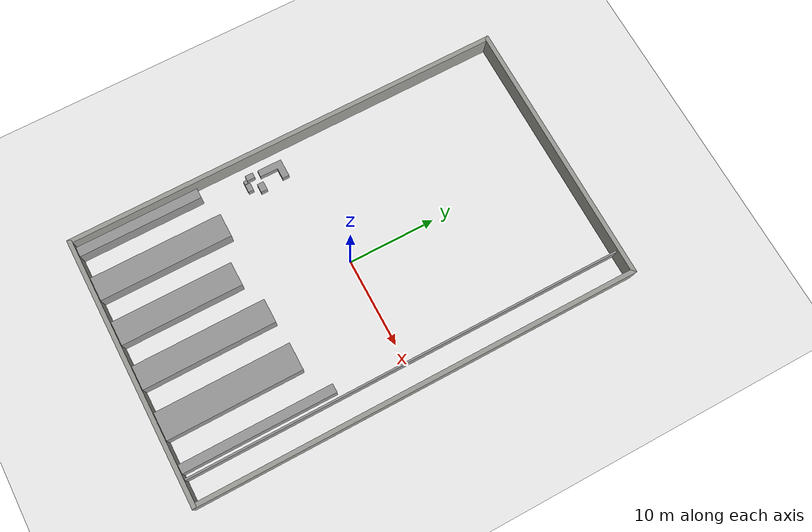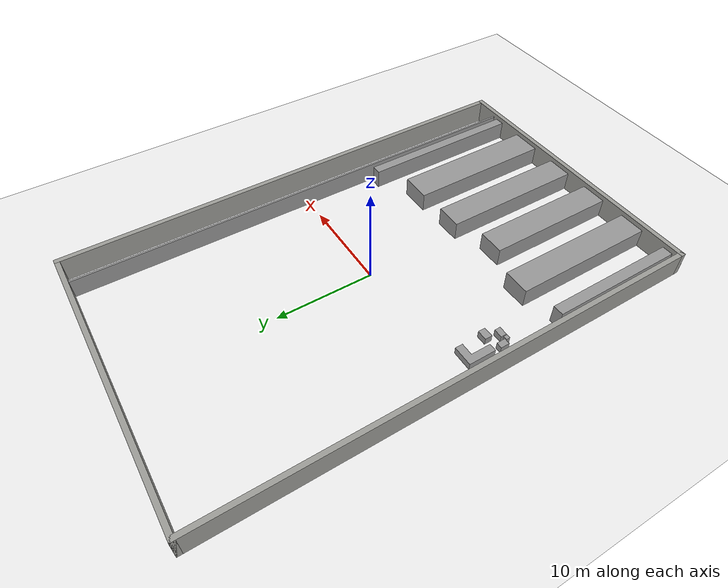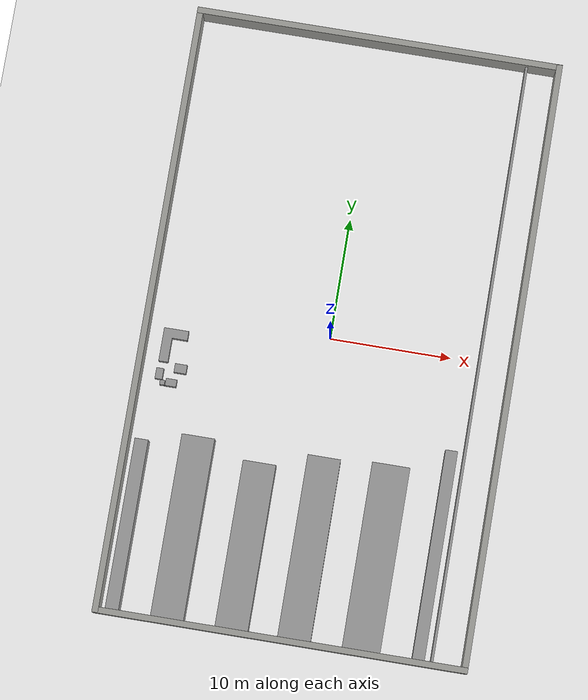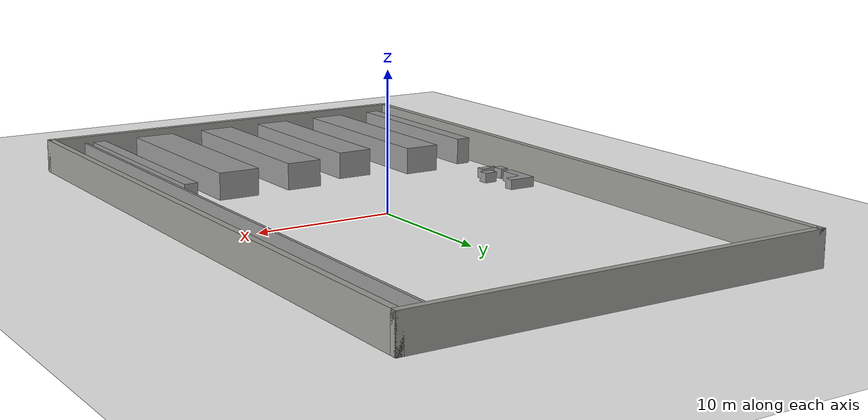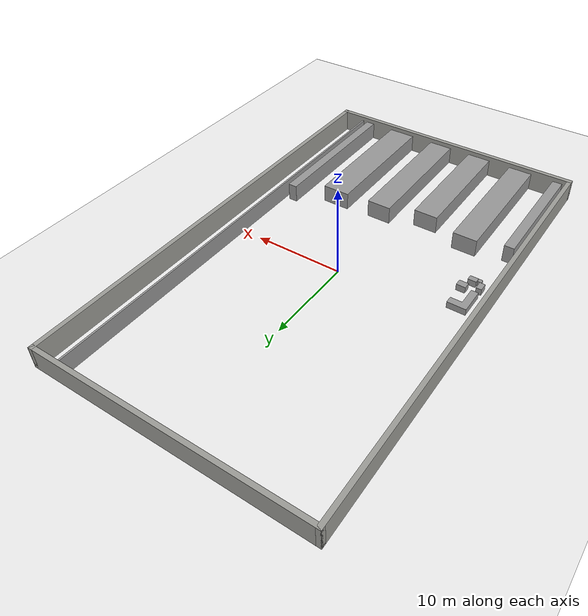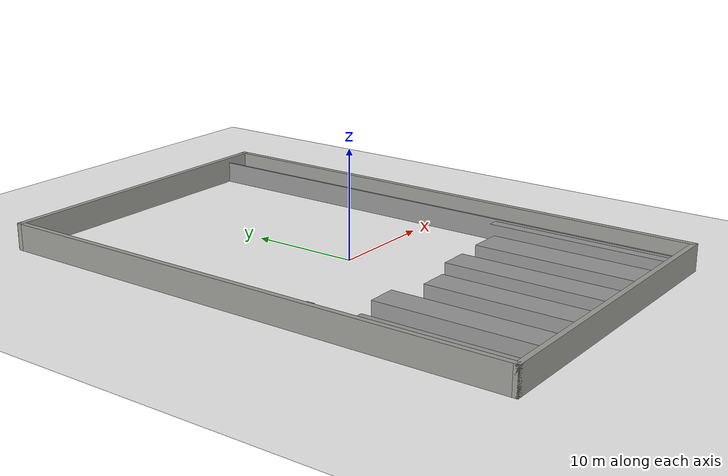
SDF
<?xml version='1.0' encoding='utf-8'?>
<sdf version="1.8">
  <world name="world_demo">

    <gravity>0 0 -9.8</gravity>
    <physics type='ode'>
      <max_step_size>0.004</max_step_size>
      <real_time_factor>1</real_time_factor>
      <max_contacts>10</max_contacts>
    </physics>
    <plugin name='gz::sim::systems::Physics' filename='gz-sim-physics-system'/>
    <plugin name='gz::sim::systems::UserCommands' filename='gz-sim-user-commands-system'/>
    <plugin name='gz::sim::systems::SceneBroadcaster' filename='gz-sim-scene-broadcaster-system'/>
    <plugin name='gz::sim::systems::Imu' filename='gz-sim-imu-system'/>
    <plugin name='gz::sim::systems::Sensors' filename='gz-sim-sensors-system'>
      <render_engine>ogre2</render_engine>
    </plugin>

    <scene>
      <ambient>0.4 0.4 0.4 1</ambient>
      <background>0.7 0.7 0.7 1</background>
      <shadows>1</shadows>
    </scene>

    <light name='sun' type='directional'>
      <cast_shadows>1</cast_shadows>
      <pose>12.79 -58.5 10 0 0 0</pose>
      <diffuse>0.7 0.7 0.7 1</diffuse>
      <specular>0.2 0.2 0.2 1</specular>
      <direction>-0.5 0.1 -0.9</direction>
    </light>

    <model name='ground_plane'>
      <pose>12.79 -58.5 0 0 0 0</pose>
      <static>true</static>
      <link name='link'>
        <collision name='collision'>
          <pose>-30 60 0 0 0 0</pose>
          <geometry><plane><normal>0 0 1</normal><size>100 130</size></plane></geometry>
        </collision>
        <visual name='visual'>
          <pose>-30 60 0 0 0 0</pose>
          <cast_shadows>0</cast_shadows>
          <geometry><plane><normal>0 0 1</normal><size>100 130</size></plane></geometry>
          <material>
            <ambient>0.95 0.95 0.95 1</ambient>
            <diffuse>0.95 0.95 0.95 1</diffuse>
            <specular>0.01 0.01 0.01 1</specular>
          </material>
        </visual>
      </link>
    </model>

    <!-- Camara CENITAL, igual que en tugbot_warehouse: (0,0) a 38 m, FOV 1.3
         rad -> cubre ~58 m, el recorte de 30 x 50 m entero. -->
    <model name="overhead_camera">
      <static>true</static>
      <pose>0 0 38 0 1.5707963 0</pose>
      <link name="link">
        <sensor name="overhead" type="camera">
          <topic>/overhead/image</topic>
          <update_rate>15</update_rate>
          <camera>
            <horizontal_fov>1.3</horizontal_fov>
            <image><width>900</width><height>900</height><format>R8G8B8</format></image>
            <clip><near>0.1</near><far>80.0</far></clip>
          </camera>
          <always_on>1</always_on>
          <visualize>false</visualize>
        </sensor>
      </link>
    </model>

    <!-- Recorte 30 x 50 m del mundo original (scripts/crop_world.py) -->
    <include>
      <uri>model://rubber_factory_crop</uri>
      <name>rubber_factory_crop</name>
      <pose>0 0 0 0 0 0</pose>
    </include>

    <!-- Paredes perimetrales del recorte (crop_world.py): caras interiores en
         x=+-14.75, y=+-24.75. 2.5 m de alto: el LiDAR las
         ve y no tapan la cenital. -->
    <model name="perimeter_walls">
      <static>true</static>
      <link name="link">
        <collision name="wall_north_collision"><pose>0 25.0 1.25 0 0 0</pose>
          <geometry><box><size>30.5 0.5 2.5</size></box></geometry></collision>
        <visual name="wall_north_visual"><pose>0 25.0 1.25 0 0 0</pose>
          <geometry><box><size>30.5 0.5 2.5</size></box></geometry>
          <material><ambient>0.62 0.62 0.6 1</ambient><diffuse>0.62 0.62 0.6 1</diffuse></material></visual>
        <collision name="wall_south_collision"><pose>0 -25.0 1.25 0 0 0</pose>
          <geometry><box><size>30.5 0.5 2.5</size></box></geometry></collision>
        <visual name="wall_south_visual"><pose>0 -25.0 1.25 0 0 0</pose>
          <geometry><box><size>30.5 0.5 2.5</size></box></geometry>
          <material><ambient>0.62 0.62 0.6 1</ambient><diffuse>0.62 0.62 0.6 1</diffuse></material></visual>
        <collision name="wall_east_collision"><pose>15.0 0 1.25 0 0 0</pose>
          <geometry><box><size>0.5 50.5 2.5</size></box></geometry></collision>
        <visual name="wall_east_visual"><pose>15.0 0 1.25 0 0 0</pose>
          <geometry><box><size>0.5 50.5 2.5</size></box></geometry>
          <material><ambient>0.62 0.62 0.6 1</ambient><diffuse>0.62 0.62 0.6 1</diffuse></material></visual>
        <collision name="wall_west_collision"><pose>-15.0 0 1.25 0 0 0</pose>
          <geometry><box><size>0.5 50.5 2.5</size></box></geometry></collision>
        <visual name="wall_west_visual"><pose>-15.0 0 1.25 0 0 0</pose>
          <geometry><box><size>0.5 50.5 2.5</size></box></geometry>
          <material><ambient>0.62 0.62 0.6 1</ambient><diffuse>0.62 0.62 0.6 1</diffuse></material></visual>
      </link>
    </model>

  </world>
</sdf>

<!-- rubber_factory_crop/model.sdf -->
<!-- GENERADO por scripts/crop_world.py a partir de worlds/rubber_factory.sdf:
     ventana 30 x 50 m centrada en (-12.79, 58.5) del mundo original,
     trasladada al origen. No editar a mano. -->
<sdf version="1.8">
  <model name="rubber_factory_crop">
    <static>true</static>
    <link name="link">
      <collision name="emka_factory__collision">
        <geometry><mesh><uri>model://rubber_factory_crop/meshes/emka_factory__link_1__collision.stl</uri></mesh></geometry>
        <laser_retro>0</laser_retro><max_contacts>10</max_contacts><surface>
          <friction>
            <ode>
              <mu>1</mu>
              <mu2>1</mu2>
              <fdir1>0 0 0</fdir1>
              <slip1>0</slip1>
              <slip2>0</slip2>
            </ode>
            <torsional>
              <coefficient>1</coefficient>
              <patch_radius>0</patch_radius>
              <surface_radius>0</surface_radius>
              <use_patch_radius>1</use_patch_radius>
              <ode>
                <slip>0</slip>
              </ode>
            </torsional>
          </friction>
          <bounce>
            <restitution_coefficient>0</restitution_coefficient>
            <threshold>1e+06</threshold>
          </bounce>
          <contact>
            <collide_without_contact>0</collide_without_contact>
            <collide_without_contact_bitmask>1</collide_without_contact_bitmask>
            <collide_bitmask>1</collide_bitmask>
            <ode>
              <soft_cfm>0</soft_cfm>
              <soft_erp>0.2</soft_erp>
              <kp>1e+13</kp>
              <kd>1</kd>
              <max_vel>0.01</max_vel>
              <min_depth>0</min_depth>
            </ode>
            <bullet>
              <split_impulse>1</split_impulse>
              <split_impulse_penetration_threshold>-0.01</split_impulse_penetration_threshold>
              <soft_cfm>0</soft_cfm>
              <soft_erp>0.2</soft_erp>
              <kp>1e+13</kp>
              <kd>1</kd>
            </bullet>
          </contact>
        </surface>
      </collision>
      <visual name="emka_factory__visual">
        <geometry><mesh><uri>model://rubber_factory_crop/meshes/emka_factory__link_1__visual__vis.stl</uri></mesh></geometry>
        <material>
          <lighting>1</lighting>
          <script>
            <uri>file://media/materials/scripts/gazebo.material</uri>
            <name>Gazebo/Grey</name>
          </script>
          <shader type="vertex">
            <normal_map>__default__</normal_map>
          </shader>
        </material><transparency>0</transparency><cast_shadows>1</cast_shadows>
      </visual>
    </link>
  </model>
</sdf>
